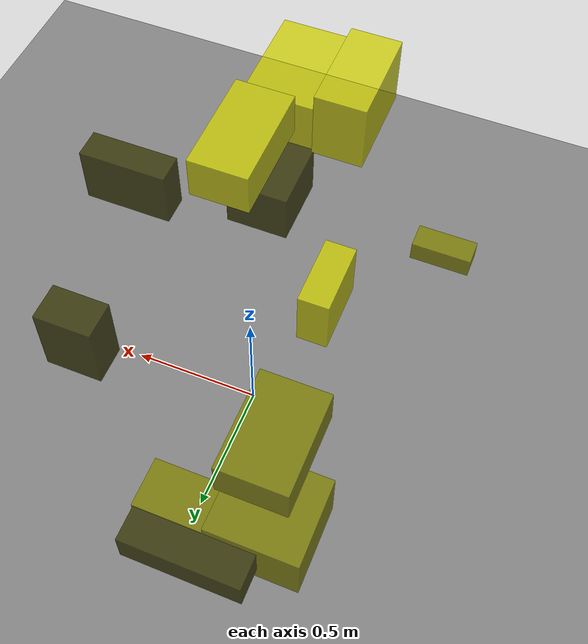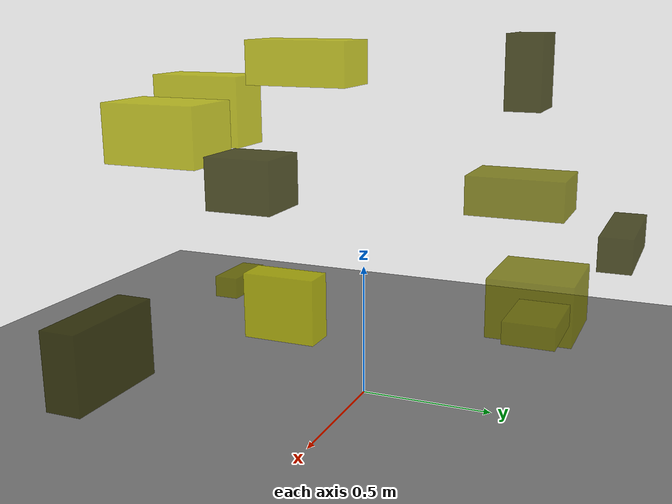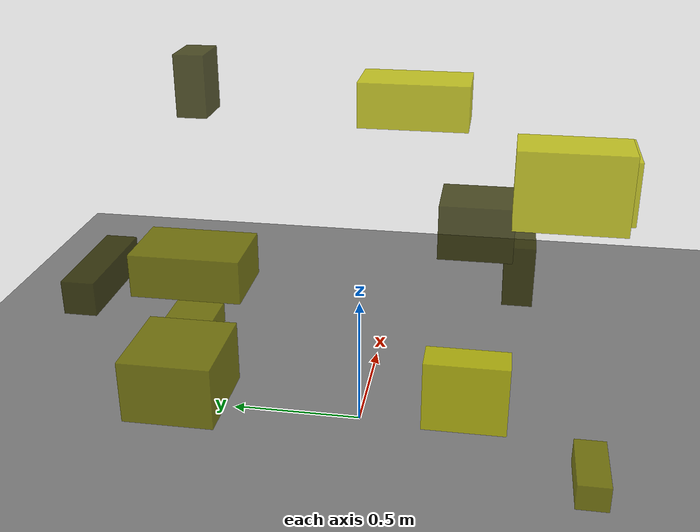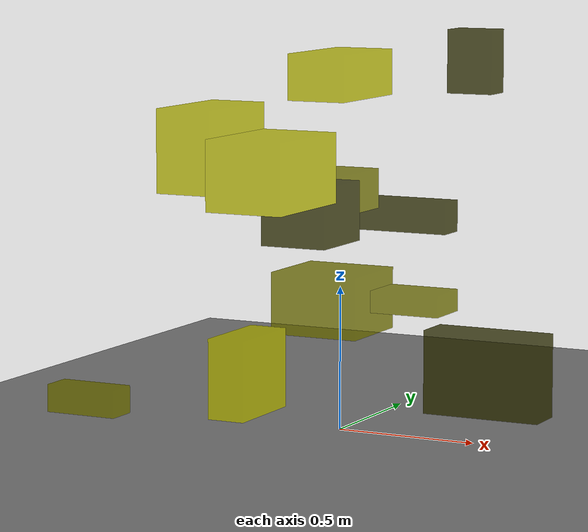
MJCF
<?xml version="1.0"?>
<mujoco model="obstacle_scene">
  <compiler angle="radian" coordinate="local"/>
  <option timestep="0.001" gravity="0 0 -9.81"/>

  <asset>
    <material name="obstacle_mat" rgba="0.8 0.8 0.0 0.8"/>
    <material name="ground_mat" rgba="0.5 0.5 0.5 1"/>
  </asset>

  <worldbody>
    <!-- Ground plane -->
    <geom name="ground" type="plane" size="3 3 0.1" material="ground_mat"/>

    <!-- Obstacles -->
    <body name="obstacle_0" pos="-0.182846 0.904605 0.639056">
      <geom name="obs_0" type="box" size="0.203587 0.057609 0.059835" rgba="0.2 0.2 0.0 0.8"/>
    </body>
    <body name="obstacle_1" pos="-0.511309 -0.828997 0.210684">
      <geom name="obs_1" type="box" size="0.124790 0.053308 0.045581" rgba="0.5 0.5 0.0 0.8"/>
    </body>
    <body name="obstacle_2" pos="-0.115969 -0.712257 1.044212">
      <geom name="obs_2" type="box" size="0.094834 0.185196 0.135067" rgba="0.8 0.8 0.0 0.8"/>
    </body>
    <body name="obstacle_3" pos="0.225277 0.639927 1.246264">
      <geom name="obs_3" type="box" size="0.085231 0.056054 0.114502" rgba="0.2 0.2 0.0 0.8"/>
    </body>
    <body name="obstacle_4" pos="-0.036416 0.648455 0.357454">
      <geom name="obs_4" type="box" size="0.156591 0.092975 0.040699" rgba="0.5 0.5 0.0 0.8"/>
    </body>
    <body name="obstacle_5" pos="0.120776 -0.746932 0.980096">
      <geom name="obs_5" type="box" size="0.131119 0.195680 0.114268" rgba="0.8 0.8 0.0 0.8"/>
    </body>
    <body name="obstacle_6" pos="0.795301 -0.583021 0.363475">
      <geom name="obs_6" type="box" size="0.191368 0.063620 0.132557" rgba="0.2 0.2 0.0 0.8"/>
    </body>
    <body name="obstacle_7" pos="-0.305889 0.511990 0.760406">
      <geom name="obs_7" type="box" size="0.124145 0.185246 0.073629" rgba="0.5 0.5 0.0 0.8"/>
    </body>
    <body name="obstacle_8" pos="-0.147899 -0.408013 0.254817">
      <geom name="obs_8" type="box" size="0.065097 0.153643 0.135452" rgba="0.8 0.8 0.0 0.8"/>
    </body>
    <body name="obstacle_9" pos="0.089765 -0.409504 0.809382">
      <geom name="obs_9" type="box" size="0.114738 0.131773 0.099869" rgba="0.2 0.2 0.0 0.8"/>
    </body>
    <body name="obstacle_10" pos="-0.319717 0.590429 0.346256">
      <geom name="obs_10" type="box" size="0.171080 0.162896 0.115041" rgba="0.5 0.5 0.0 0.8"/>
    </body>
    <body name="obstacle_11" pos="0.085382 -0.178152 1.248583">
      <geom name="obs_11" type="box" size="0.101801 0.188135 0.077559" rgba="0.8 0.8 0.0 0.8"/>
    </body>
  </worldbody>
</mujoco>
